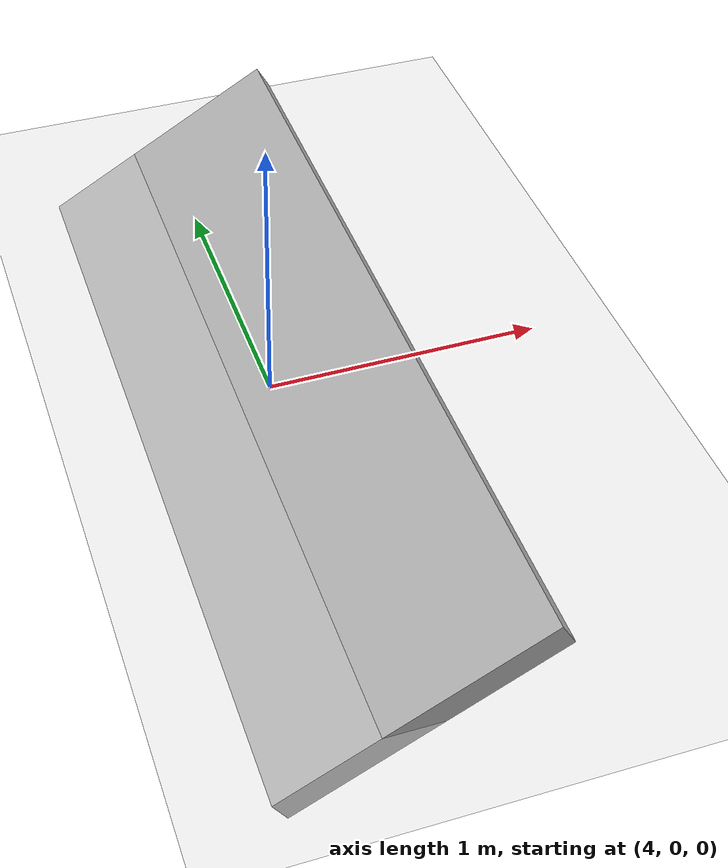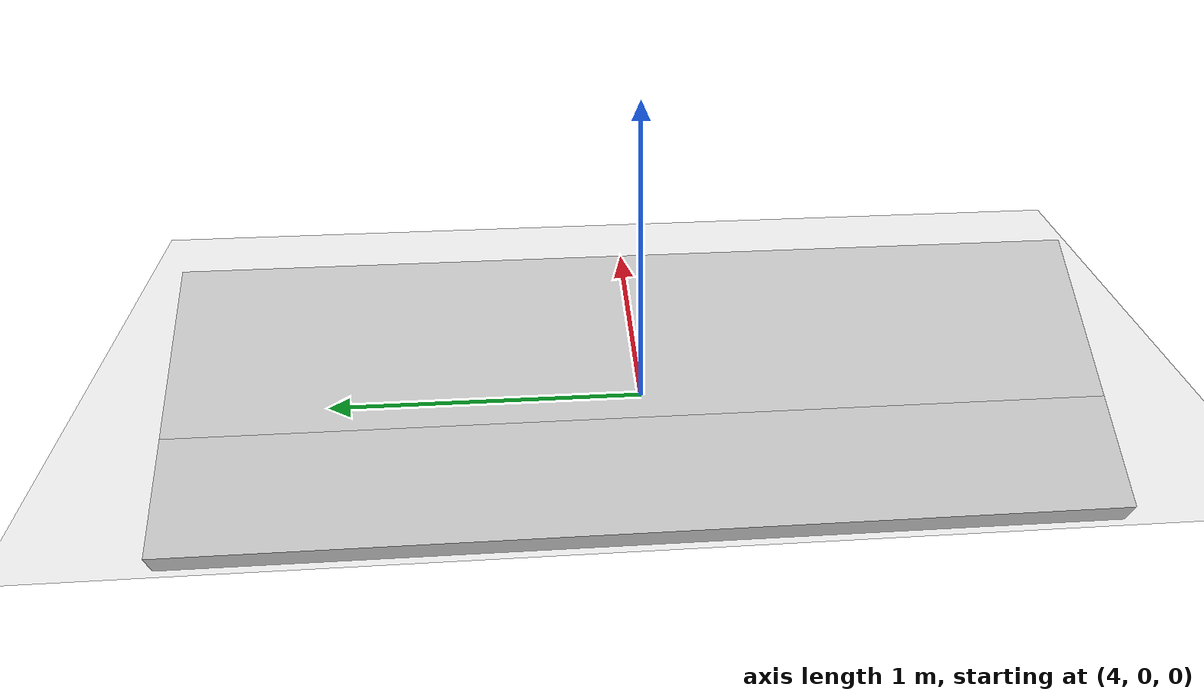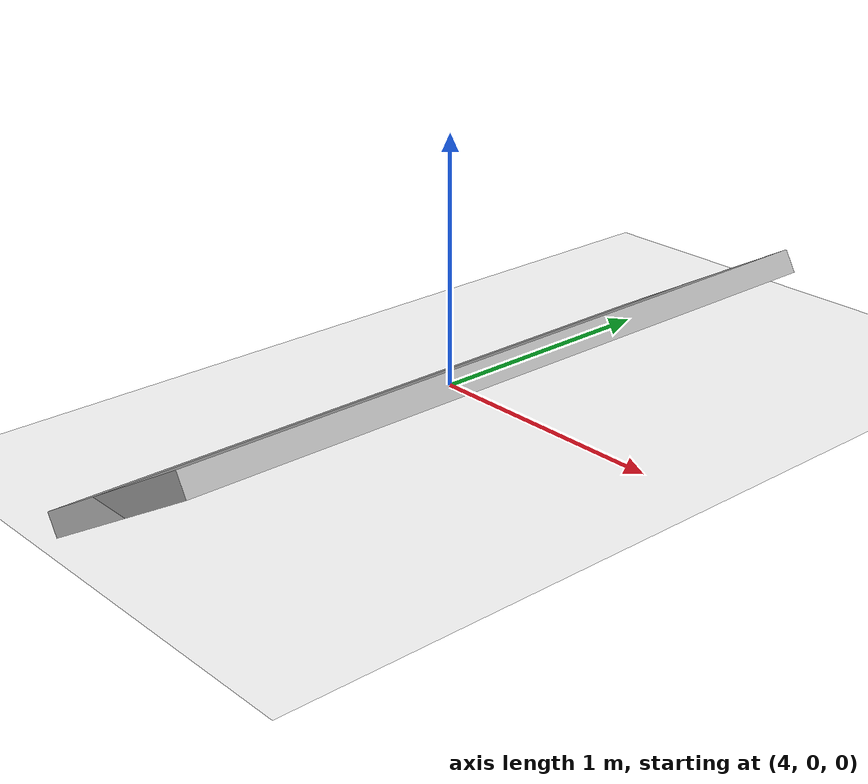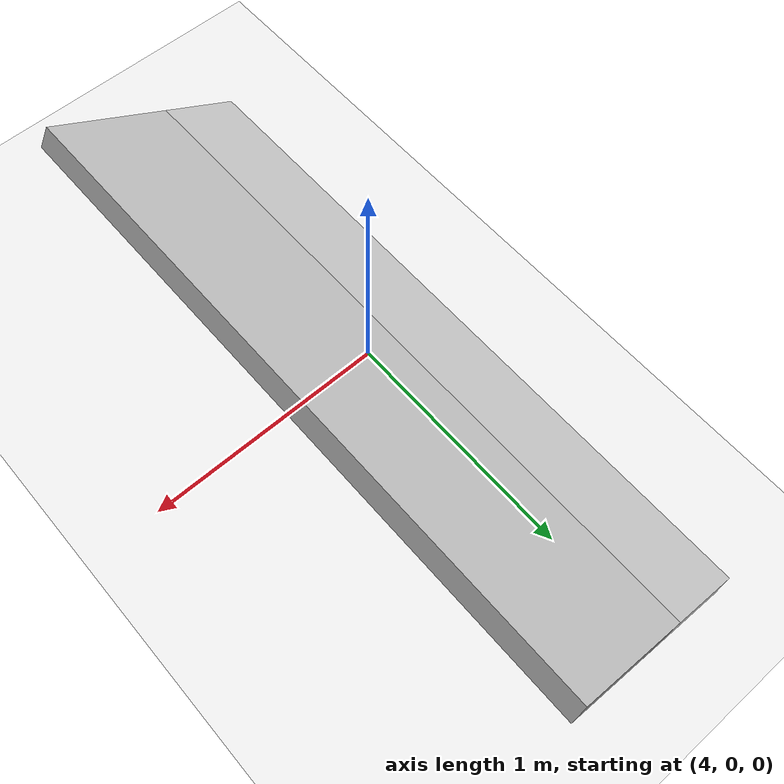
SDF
<?xml version="1.0" ?>
<sdf version="1.4">
  <world name="default">
    <include>
      <uri>model://ground_plane</uri>
    </include>
    <include>
      <uri>model://sun</uri>
    </include>
    <model name="box">
      <static>true</static>

      <pose>4 0 0.01 0 -0.52 0</pose>
      <link name="slope">
        <collision name="collision">
          <geometry>
            <box>
              <size>1 3 .1</size>
            </box>
          </geometry>
        </collision>
        <visual name="visual">
          <geometry>
            <box>
              <size>1 3 .1</size>
            </box>
          </geometry>
        </visual>
      </link>
    </model>
  </world>
</sdf>
